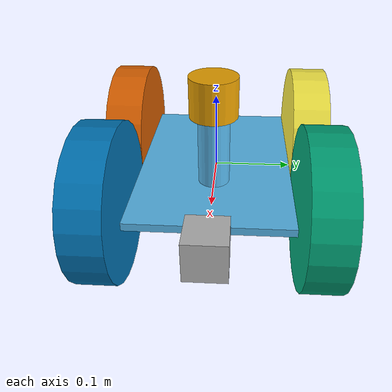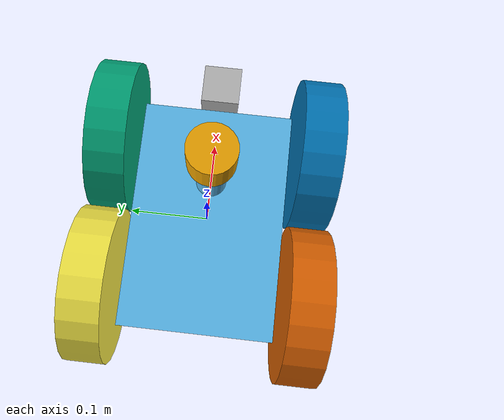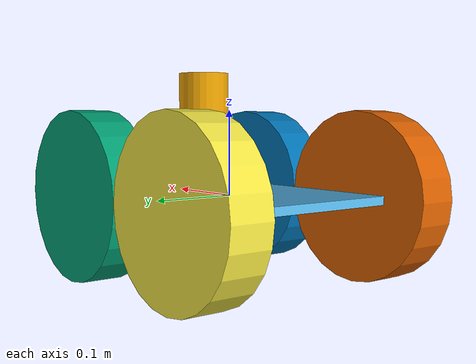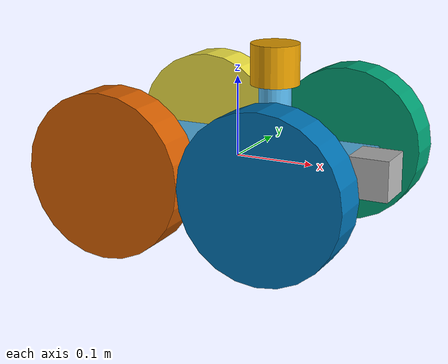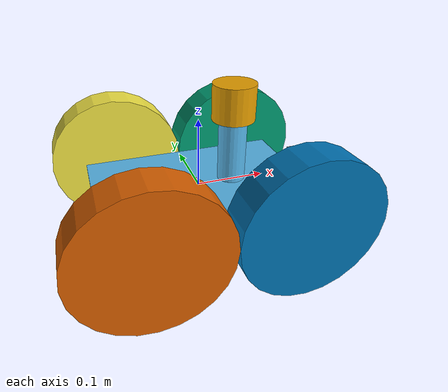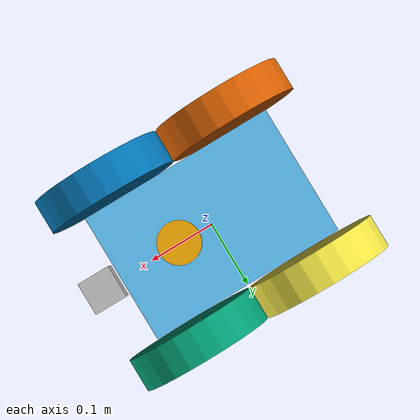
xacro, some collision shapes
<?xml version='1.0'?>

<robot name="My_bot" xmlns:xacro="http://www.ros.org/wiki/xacro">
  <xacro:include filename="$(find slam_project)/urdf/My_bot.gazebo" />
  <link name="robot_footprint"></link>

  <joint name="robot_footprint_joint" type="fixed">
    <origin xyz="0 0 0" rpy="0 0 0" />
    <parent link="robot_footprint"/>
    <child link="chassis" />
  </joint>

  <link name='chassis'>
    <pose>0 0 0.1 0 0 0</pose>

    <inertial>
      <mass value="15.0"/>
      <origin xyz="0.0 0 0" rpy=" 0 0 0"/>
      <inertia
          ixx="0.1" ixy="0" ixz="0"
          iyy="0.1" iyz="0"
          izz="0.1"
      />
    </inertial>

    <collision name='collision'>
      <origin xyz="0 0 0" rpy=" 0 0 0"/>
      <geometry>
        <box size=".3 .4 .01"/>
      </geometry>
    </collision>

    <visual name='chassis_visual'>
      <origin xyz="0 0 0" rpy=" 0 0 0"/>
      <geometry>
        <box size=".3 .2 .01"/>
      </geometry>
    </visual>
    <collision name='laser_support'>
       <origin xyz="0.05 0 0.05" rpy=" 0 0 0"/>
       <geometry>
         <cylinder length="0.1" radius="0.02"/>
       </geometry>
    </collision>
    <visual name='laser_support'>
      <origin xyz="0.05 0 0.05" rpy=" 0 0 0"/>
      <geometry>
        <cylinder length="0.1" radius="0.02"/>
      </geometry>
    </visual>
  </link>
  <link name='front_left_wheel'>

    <inertial>
      <mass value="5.0"/>
      <origin xyz="0.0 0 0" rpy=" 0 1.5707 1.5707"/>
      <inertia
          ixx="0.1" ixy="0" ixz="0"
          iyy="0.1" iyz="0"
          izz="0.1"
      />
    </inertial>
    <collision name='collision'>
       <origin xyz="0 0 0" rpy=" 0 1.5707 1.5707"/>
       <geometry>
         <cylinder length="0.05" radius="0.1"/>
       </geometry>
    </collision>
    <visual name='left_wheel_visual'>
      <origin xyz="0 0 0" rpy=" 0 1.5707 1.5707"/>
      <geometry>
        <cylinder length="0.05" radius="0.1"/>
      </geometry>
    </visual>

  </link>
  <link name='rear_left_wheel'>

    <inertial>
      <mass value="5.0"/>
      <origin xyz="0.0 0 0" rpy=" 0 1.5707 1.5707"/>
      <inertia
          ixx="0.1" ixy="0" ixz="0"
          iyy="0.1" iyz="0"
          izz="0.1"
      />
    </inertial>
    <collision name='collision'>
       <origin xyz="0 0 0" rpy=" 0 1.5707 1.5707"/>
       <geometry>
         <cylinder length="0.05" radius="0.1"/>
       </geometry>
    </collision>
    <visual name='left_wheel_visual'>
      <origin xyz="0 0 0" rpy=" 0 1.5707 1.5707"/>
      <geometry>
        <cylinder length="0.05" radius="0.1"/>
      </geometry>
    </visual>

  </link>
  <link name='front_right_wheel'>

    <inertial>
      <mass value="5.0"/>
      <origin xyz="0.0 0 0" rpy=" 0 1.5707 1.5707"/>
      <inertia
          ixx="0.1" ixy="0" ixz="0"
          iyy="0.1" iyz="0"
          izz="0.1"
      />
    </inertial>
    <collision name='collision'>
       <origin xyz="0 0 0" rpy=" 0 1.5707 1.5707"/>
       <geometry>
          <cylinder length="0.05" radius="0.1"/>
       </geometry>
    </collision>
    <visual name='right_wheel_visual'>
      <origin xyz="0 0 0" rpy=" 0 1.5707 1.5707"/>
      <geometry>
         <cylinder length="0.05" radius="0.1"/>
      </geometry>
    </visual>

  </link>
  <link name='rear_right_wheel'>

    <inertial>
      <mass value="5.0"/>
      <origin xyz="0.0 0 0" rpy=" 0 1.5707 1.5707"/>
      <inertia
          ixx="0.1" ixy="0" ixz="0"
          iyy="0.1" iyz="0"
          izz="0.1"
      />
    </inertial>
    <collision name='collision'>
       <origin xyz="0 0 0" rpy=" 0 1.5707 1.5707"/>
       <geometry>
          <cylinder length="0.05" radius="0.1"/>
       </geometry>
    </collision>
    <visual name='right_wheel_visual'>
      <origin xyz="0 0 0" rpy=" 0 1.5707 1.5707"/>
      <geometry>
         <cylinder length="0.05" radius="0.1"/>
      </geometry>
    </visual>

  </link>
 <joint name="camera_optical_joint" type="fixed">
  	<origin xyz="0 0 0" rpy="${-pi/2} 0 ${-pi/2}"/>
	<parent link="camera"/>
	<child link="camera_link_optical"/>
  </joint>

  <link name='camera_link_optical'>
  </link>
  <link name='camera'>

    <inertial>
      <mass value="0.1"/>
      <origin xyz="0.0 0 0" rpy=" 0 1.5707 1.5707"/>
      <inertia
          ixx="0.1" ixy="0" ixz="0"
          iyy="0.1" iyz="0"
          izz="0.1"
      />
    </inertial>
    <collision name='collision'>
       <origin xyz="0 0 0" rpy=" 0 1.5707 1.5707"/>
       <geometry>
         <box size="0.05 0.05 0.05"/>
       </geometry>
    </collision>
    <visual name='camera_visual'>
      <origin xyz="0 0 0" rpy=" 0 1.5707 1.5707"/>
      <geometry>
        <box size="0.05 0.05 0.05"/>
      </geometry>
    </visual>

  </link>

  <link name='hokuyo'>

    <inertial>
      <mass value="0.05"/>
      <origin xyz="0.0 0 0" rpy=" 0 0 0"/>
      <inertia
          ixx="0.1" ixy="0" ixz="0"
          iyy="0.1" iyz="0"
          izz="0.1"
      />
    </inertial>
    <collision name='collision'>
       <origin xyz="0 0 0" rpy=" 0 0 0"/>
       <geometry>
         <cylinder radius="0.03" length="0.05"/>
       </geometry>
    </collision>
    <visual name='hokuyo_visual'>
      <origin xyz="0 0 0" rpy=" 0 0 0"/>
      <geometry>
        <mesh filename="package://udacity_bot/meshes/hokuyo.dae"/>
      </geometry>
      <materiel>
	<color rgba="0 0 0 1"/>
      </materiel>
    </visual>

  </link>
  <joint type="fixed" name="hokuyo_joint">
    <origin xyz="0.05 0 0.12" rpy="0 0 0"/>
    <child link="hokuyo"/>
    <parent link="chassis"/>
  </joint>

  <joint type="fixed" name="camera_joint">
    <origin xyz="0.18 0 0" rpy="0 0 0"/>
    <child link="camera"/>
    <parent link="chassis"/>
    <axis xyz="0 1 0" rpy="0 0 0"/>
  </joint>

  <joint type="continuous" name="front_left_wheel_hinge">
    <origin xyz="0.1 0.13 0.0" rpy="0 0 0"/>
    <child link="front_left_wheel"/>
    <parent link="chassis"/>
    <axis xyz="0 1 0" rpy="0 0 0"/>
    <limit effort="10000" velocity="1000"/>
    <dynamics damping="1.0" friction="1.0"/>
  </joint>
  <joint type="continuous" name="rear_left_wheel_hinge">
    <origin xyz="-0.1 0.13 0.0" rpy="0 0 0"/>
    <child link="rear_left_wheel"/>
    <parent link="chassis"/>
    <axis xyz="0 1 0" rpy="0 0 0"/>
    <limit effort="10000" velocity="1000"/>
    <dynamics damping="1.0" friction="1.0"/>
  </joint>
  <joint type="continuous" name="front_right_wheel_hinge">
    <origin xyz="0.1 -0.13 0" rpy="0 0 0"/>
    <child link="front_right_wheel"/>
    <parent link="chassis"/>
    <axis xyz="0 1 0" rpy="0 0 0"/>
    <limit effort="10000" velocity="1000"/>
    <dynamics damping="1.0" friction="1.0"/>
  </joint>
  <joint type="continuous" name="rear_right_wheel_hinge">
    <origin xyz="-0.1 -0.13 0" rpy="0 0 0"/>
    <child link="rear_right_wheel"/>
    <parent link="chassis"/>
    <axis xyz="0 1 0" rpy="0 0 0"/>
    <limit effort="10000" velocity="1000"/>
    <dynamics damping="1.0" friction="1.0"/>
  </joint>

</robot>
